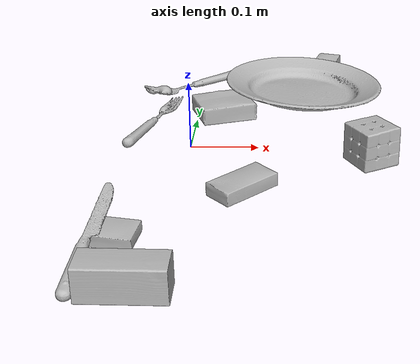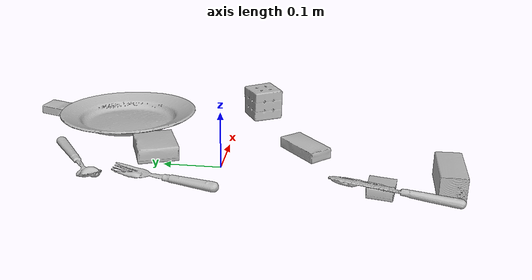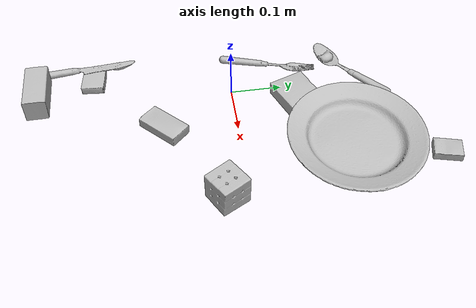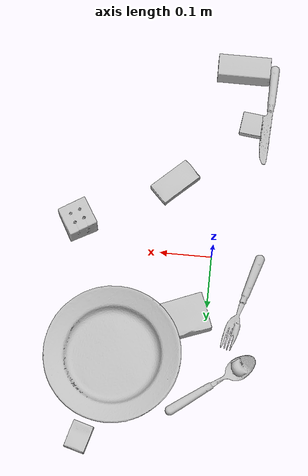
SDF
<sdf version="1.4">
  <world name="default">
    <light name="light1" type="point">
      <pose>0 0 1 0 0 0</pose>
      <diffuse>3 3 3 1</diffuse>
      <specular>3 3 3 1</specular>
    </light>
    <light name="light2" type="point">
      <pose>0 0.5 2 0 0 0</pose>
      <diffuse>1 1 1 1</diffuse>
      <specular>1 1 1 1</specular>
    </light>
    <light name="light3" type="point">
      <pose>0 0.5 2 0 0 0</pose>
      <diffuse>3 3 3 1</diffuse>
      <specular>3 3 3 1</specular>
    </light>
    <scene>
      <ambient>0.7 0.7 0.7</ambient>
    </scene>
    <model name="box11">
      <link name="link_box11">
        <collision name="default">
          <geometry>
            <mesh>
              <uri>model://gelatin_box/collision_meshes/collision.obj</uri>
              <scale>1.0 1.0 1.0</scale>
            </mesh>
          </geometry>
          <surface>
            <friction>
              <ode>
                <mu>0.5</mu>
                <mu2>0.5</mu2>
              </ode>
            </friction>
          <contact>
        <ode>
            <max_vel>0</max_vel>
            <min_depth>0.0001</min_depth>
            <kp>1e8</kp>
        </ode>
    </contact></surface>
        </collision>
        <visual name="default">
          <geometry>
            <mesh>
              <uri>model://gelatin_box/visual_meshes/visual.dae</uri>
              <scale>1.0 1.0 1.0</scale>
            </mesh>
          </geometry>
        </visual>
        <inertial>
          <mass>0.25029057264328003</mass>
          <pose>0.0004319618456065655 0.00011156871914863586 -0.0003640321083366871 -0.0010503719874808634 -0.004755820553863559 0.01644055760983946</pose>
          <inertia>
            <ixx>0.00017668474</ixx>
            <iyy>0.000126205</iyy>
            <izz>0.00026895347</izz>
            <ixy>0</ixy>
            <ixz>0</ixz>
            <iyz>0</iyz>
          </inertia>
        </inertial>
      </link>
      <pose>0.04073891416192055 0.12462765723466873 0.015168321318924427 0.005595138089680919 -0.007302422653922087 1.9366601673000672</pose>
    </model>
    <model name="box12">
      <link name="link_box12">
        <collision name="default">
          <geometry>
            <mesh>
              <uri>model://rubiks_cube/collision_meshes/collision.obj</uri>
              <scale>1.0 1.0 1.0</scale>
            </mesh>
          </geometry>
          <surface>
            <friction>
              <ode>
                <mu>0.5</mu>
                <mu2>0.5</mu2>
              </ode>
            </friction>
          <contact>
        <ode>
            <max_vel>0</max_vel>
            <min_depth>0.0001</min_depth>
            <kp>1e8</kp>
        </ode>
    </contact></surface>
        </collision>
        <visual name="default">
          <geometry>
            <mesh>
              <uri>model://rubiks_cube/visual_meshes/visual.dae</uri>
              <scale>1.0 1.0 1.0</scale>
            </mesh>
          </geometry>
        </visual>
        <inertial>
          <mass>0.21638615429401398</mass>
          <pose>2.6721043468569405e-05 5.2569666877388954e-05 -7.264316536748083e-06 -0.054671974778446215 -0.0981397652693683 -0.03445575269454635</pose>
          <inertia>
            <ixx>0.00011956789</ixx>
            <iyy>0.00011901029</iyy>
            <izz>0.00012055871</izz>
            <ixy>0</ixy>
            <ixz>0</ixz>
            <iyz>0</iyz>
          </inertia>
        </inertial>
      </link>
      <pose>0.26109567284584045 -0.042815614491701126 0.028678975999355316 -3.2612404484561797e-06 -1.2820848893860178e-06 -2.5994478851865774</pose>
    </model>
    <model name="box13">
      <link name="link_box13">
        <collision name="default">
          <geometry>
            <mesh>
              <uri>model://pudding_box/collision_meshes/collision.obj</uri>
              <scale>0.5 0.5 0.5</scale>
            </mesh>
          </geometry>
          <surface>
            <friction>
              <ode>
                <mu>0.5</mu>
                <mu2>0.5</mu2>
              </ode>
            </friction>
          <contact>
        <ode>
            <max_vel>0</max_vel>
            <min_depth>0.0001</min_depth>
            <kp>1e8</kp>
        </ode>
    </contact></surface>
        </collision>
        <visual name="default">
          <geometry>
            <mesh>
              <uri>model://pudding_box/visual_meshes/visual.dae</uri>
              <scale>0.5 0.5 0.5</scale>
            </mesh>
          </geometry>
        </visual>
        <inertial>
          <mass>0.024692855775356293</mass>
          <pose>0.00024474109522998333 0.00040339428232982755 -0.0002594413817860186 0.005213102294063647 -0.006603794537377036 0.020079827031592012</pose>
          <inertia>
            <ixx>6.9785e-06</ixx>
            <iyy>4.695185e-06</iyy>
            <izz>1.030558e-05</izz>
            <ixy>0</ixy>
            <ixz>0</ixz>
            <iyz>0</iyz>
          </inertia>
        </inertial>
      </link>
      <pose>-0.06121106073260307 -0.2693021297454834 0.009982258081436157 0.01832773929769405 -0.022193322195951746 1.4414293786993357</pose>
    </model>
    <model name="box21">
      <link name="link_box21">
        <collision name="default">
          <geometry>
            <mesh>
              <uri>model://wood_block/collision_meshes/collision.obj</uri>
              <scale>0.5 0.5 0.5</scale>
            </mesh>
          </geometry>
          <surface>
            <friction>
              <ode>
                <mu>0.5</mu>
                <mu2>0.5</mu2>
              </ode>
            </friction>
          <contact>
        <ode>
            <max_vel>0</max_vel>
            <min_depth>0.0001</min_depth>
            <kp>1e8</kp>
        </ode>
    </contact></surface>
        </collision>
        <visual name="default">
          <geometry>
            <mesh>
              <uri>model://wood_block/visual_meshes/visual.dae</uri>
              <scale>0.5 0.5 0.5</scale>
            </mesh>
          </geometry>
        </visual>
        <inertial>
          <mass>0.2621258497238159</mass>
          <pose>-2.9066577553749084e-06 -0.000285404734313488 0.00013204291462898254 -0.05220799390803197 -0.005192696360797016 -0.006861376940793837</pose>
          <inertia>
            <ixx>8.7691005e-05</ixx>
            <iyy>0.00027701593</iyy>
            <izz>0.00027597975</izz>
            <ixy>0</ixy>
            <ixz>0</ixz>
            <iyz>0</iyz>
          </inertia>
        </inertial>
      </link>
      <pose>-0.03029821626842022 -0.3779350221157074 0.022629264742136 -0.005208568923925678 0.00571870187485569 -3.1366833936210003</pose>
    </model>
    <model name="box22">
      <link name="link_box22">
        <collision name="default">
          <geometry>
            <mesh>
              <uri>model://cracker_box/collision_meshes/collision.obj</uri>
              <scale>0.25 0.25 0.25</scale>
            </mesh>
          </geometry>
          <surface>
            <friction>
              <ode>
                <mu>0.5</mu>
                <mu2>0.5</mu2>
              </ode>
            </friction>
          <contact>
        <ode>
            <max_vel>0</max_vel>
            <min_depth>0.0001</min_depth>
            <kp>1e8</kp>
        </ode>
    </contact></surface>
        </collision>
        <visual name="default">
          <geometry>
            <mesh>
              <uri>model://cracker_box/visual_meshes/visual.dae</uri>
              <scale>0.25 0.25 0.25</scale>
            </mesh>
          </geometry>
        </visual>
        <inertial>
          <mass>0.04544714838266373</mass>
          <pose>0.0002366049593547359 6.358561950037256e-05 -0.0004257383698131889 -0.0003162075981767565 -0.011106493326025165 0.0025467940711340945</pose>
          <inertia>
            <ixx>7.224829e-06</ixx>
            <iyy>1.1929612e-05</iyy>
            <izz>1.702465e-05</izz>
            <ixy>0</ixy>
            <ixz>0</ixz>
            <iyz>0</iyz>
          </inertia>
        </inertial>
      </link>
      <pose>0.21607640385627747 0.3685795068740845 0.009120447561144829 -0.011788169031706491 -0.007367169828077169 1.2939987759557665</pose>
    </model>
    <model name="box23">
      <link name="link_box23">
        <collision name="default">
          <geometry>
            <mesh>
              <uri>model://sugar_box/collision_meshes/collision.obj</uri>
              <scale>0.5 0.5 0.5</scale>
            </mesh>
          </geometry>
          <surface>
            <friction>
              <ode>
                <mu>0.5</mu>
                <mu2>0.5</mu2>
              </ode>
            </friction>
          <contact>
        <ode>
            <max_vel>0</max_vel>
            <min_depth>0.0001</min_depth>
            <kp>1e8</kp>
        </ode>
    </contact></surface>
        </collision>
        <visual name="default">
          <geometry>
            <mesh>
              <uri>model://sugar_box/visual_meshes/visual.dae</uri>
              <scale>0.5 0.5 0.5</scale>
            </mesh>
          </geometry>
        </visual>
        <inertial>
          <mass>0.08974423259496689</mass>
          <pose>0.0005171863595023751 1.924554817378521e-05 -0.00018182402709499002 -0.00040462647498757867 0.0010506636387592515 0.0026153785559760484</pose>
          <inertia>
            <ixx>1.869366e-05</ixx>
            <iyy>6.0421757e-05</iyy>
            <izz>7.233205e-05</izz>
            <ixy>0</ixy>
            <ixz>0</ixz>
            <iyz>0</iyz>
          </inertia>
        </inertial>
      </link>
      <pose>0.08309245854616165 -0.13914787769317627 0.011399300768971443 0.0007757221533485972 -0.02343291688410137 0.7552242206647375</pose>
    </model>
    <model name="plate1">
      <link name="link_plate1">
        <collision name="default">
          <geometry>
            <mesh>
              <uri>model://plate/collision_meshes/collision.obj</uri>
              <scale>1.0 1.0 1.0</scale>
            </mesh>
          </geometry>
          <surface>
            <friction>
              <ode>
                <mu>0.5</mu>
                <mu2>0.5</mu2>
              </ode>
            </friction>
          <contact>
        <ode>
            <max_vel>0</max_vel>
            <min_depth>0.0001</min_depth>
            <kp>1e8</kp>
        </ode>
    </contact></surface>
        </collision>
        <visual name="default">
          <geometry>
            <mesh>
              <uri>model://plate/visual_meshes/visual.dae</uri>
              <scale>1.0 1.0 1.0</scale>
            </mesh>
          </geometry>
        </visual>
        <inertial>
          <mass>0.25075921416282654</mass>
          <pose>-0.0006044597248546779 0.00027825814322568476 -0.0010562010575085878 0.0022187872861569474 -0.003225478732834207 0.4526086398584511</pose>
          <inertia>
            <ixx>0.0011730565</ixx>
            <iyy>0.0011618367</iyy>
            <izz>0.0022943232</izz>
            <ixy>0</ixy>
            <ixz>0</ixz>
            <iyz>0</iyz>
          </inertia>
        </inertial>
      </link>
      <pose>0.169414222240448 0.2099449187517166 0.018131662160158157 -0.056632529191580135 -0.0025035653669866964 -1.3343847122192263</pose>
    </model>
    <model name="silverware1">
      <link name="link_silverware1">
        <collision name="default">
          <geometry>
            <mesh>
              <uri>model://spoon/collision_meshes/collision.obj</uri>
              <scale>1.0 1.0 1.0</scale>
            </mesh>
          </geometry>
          <surface>
            <friction>
              <ode>
                <mu>0.5</mu>
                <mu2>0.5</mu2>
              </ode>
            </friction>
          <contact>
        <ode>
            <max_vel>0</max_vel>
            <min_depth>0.0001</min_depth>
            <kp>1e8</kp>
        </ode>
    </contact></surface>
        </collision>
        <visual name="default">
          <geometry>
            <mesh>
              <uri>model://spoon/visual_meshes/visual.dae</uri>
              <scale>1.0 1.0 1.0</scale>
            </mesh>
          </geometry>
        </visual>
        <inertial>
          <mass>0.036317918449640274</mass>
          <pose>-0.005526306107640266 -0.0016034167492762208 -0.0007271648501046002 0.03521625205726148 -0.039065835985121374 0.0061506181118877856</pose>
          <inertia>
            <ixx>2.0200612e-06</ixx>
            <iyy>0.00013818844</iyy>
            <izz>0.00013918467</izz>
            <ixy>0</ixy>
            <ixz>0</ixz>
            <iyz>0</iyz>
          </inertia>
        </inertial>
      </link>
      <pose>-0.018863476812839508 0.24792414903640747 0.00838526152074337 0.006731860874354668 0.026892976752062883 -2.5021233947182693</pose>
    </model>
    <model name="silverware2">
      <link name="link_silverware2">
        <collision name="default">
          <geometry>
            <mesh>
              <uri>model://knife/collision_meshes/collision.obj</uri>
              <scale>1.0 1.0 1.0</scale>
            </mesh>
          </geometry>
          <surface>
            <friction>
              <ode>
                <mu>0.5</mu>
                <mu2>0.5</mu2>
              </ode>
            </friction>
          <contact>
        <ode>
            <max_vel>0</max_vel>
            <min_depth>0.0001</min_depth>
            <kp>1e8</kp>
        </ode>
    </contact></surface>
        </collision>
        <visual name="default">
          <geometry>
            <mesh>
              <uri>model://knife/visual_meshes/visual.dae</uri>
              <scale>1.0 1.0 1.0</scale>
            </mesh>
          </geometry>
        </visual>
        <inertial>
          <mass>0.03166225552558899</mass>
          <pose>-0.02378525584936142 0.0015275123296305537 5.0620161346159875e-05 0.07305183970819301 0.01724842094470774 -0.007409827313526415</pose>
          <inertia>
            <ixx>8.9870355e-07</ixx>
            <iyy>0.00012164128</iyy>
            <izz>0.00012193073</izz>
            <ixy>0</ixy>
            <ixz>0</ixz>
            <iyz>0</iyz>
          </inertia>
        </inertial>
      </link>
      <pose>-0.08496097475290298 -0.29123470187187195 0.019158311188220978 0.02136914473915083 -0.12756931856726847 1.5172024383298124</pose>
    </model>
    <model name="silverware3">
      <link name="link_silverware3">
        <collision name="default">
          <geometry>
            <mesh>
              <uri>model://fork/collision_meshes/collision.obj</uri>
              <scale>1.0 1.0 1.0</scale>
            </mesh>
          </geometry>
          <surface>
            <friction>
              <ode>
                <mu>0.5</mu>
                <mu2>0.5</mu2>
              </ode>
            </friction>
          <contact>
        <ode>
            <max_vel>0</max_vel>
            <min_depth>0.0001</min_depth>
            <kp>1e8</kp>
        </ode>
    </contact></surface>
        </collision>
        <visual name="default">
          <geometry>
            <mesh>
              <uri>model://fork/visual_meshes/visual.dae</uri>
              <scale>1.0 1.0 1.0</scale>
            </mesh>
          </geometry>
        </visual>
        <inertial>
          <mass>0.03018845245242119</mass>
          <pose>-0.029570050537586212 0.00046588227269239724 0.00032188609475269914 -0.013551782414775644 -0.010977841906558662 0.014453907874592884</pose>
          <inertia>
            <ixx>1.0582761e-06</ixx>
            <iyy>7.881335e-05</iyy>
            <izz>7.928668e-05</izz>
            <ixy>0</ixy>
            <ixz>0</ixz>
            <iyz>0</iyz>
          </inertia>
        </inertial>
      </link>
      <pose>-0.06670020520687103 0.08297819644212723 0.005686848424375057 -0.19061252999333797 0.024812598380800847 1.2820164395595592</pose>
    </model>
  <physics type="ode">
      <max_contacts>50</max_contacts>
      <ode>
        <solver>
          <type>quick</type>
          <iters>75</iters>
        </solver>
        <constraints>
          <contact_max_correcting_vel>0</contact_max_correcting_vel>
          <contact_surface_layer>0</contact_surface_layer>
        </constraints>
      </ode>
    </physics></world>
</sdf>
